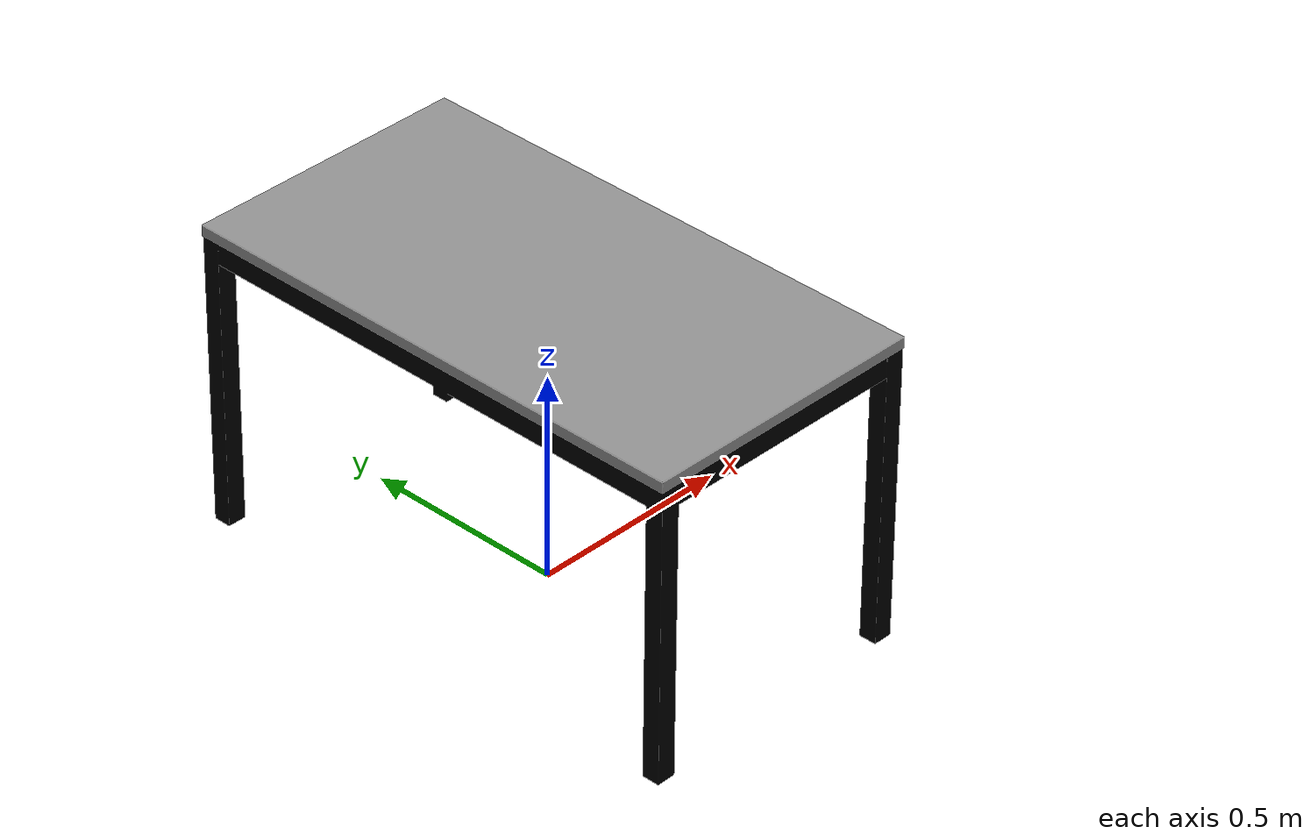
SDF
<?xml version="1.0" ?>
<sdf version="1.0">
  <model name="desk">
    <static>true</static>
    <link name="desk">
      <collision name="surface">
        <pose>0 0 0.7000 0 0 0</pose>
        <geometry>
          <box>
            <size>0.7000 1.3000 0.0800</size>
          </box>
        </geometry>
        <surface>
          <friction>
            <ode>
              <mu>0.6</mu>
              <mu2>0.6</mu2>
            </ode>
          </friction>
        </surface>
      </collision>

      <collision name="left_front_leg">
        <pose>0.3283 0.6266 0.3300 0 0 0</pose>
        <geometry>
          <box>
            <size>0.0434 0.0467 0.6600</size>
          </box>
        </geometry>
      </collision>

      <collision name="right_front_leg">
        <pose>0.3283 -0.6266 0.3300 0 0 0</pose>
        <geometry>
          <box>
            <size>0.0434 0.0467 0.6600</size>
          </box>
        </geometry>
      </collision>

      <collision name="left_back_leg">
        <pose>-0.3283 0.6266 0.3300 0 0 0</pose>
        <geometry>
          <box>
            <size>0.0434 0.0467 0.6600</size>
          </box>
        </geometry>
      </collision>

      <collision name="right_back_leg">
        <pose>-0.3283 -0.6266 0.3300 0 0 0</pose>
        <geometry>
          <box>
            <size>0.0434 0.0467 0.6600</size>
          </box>
        </geometry>
      </collision>

      <visual name="desk_mesh">
	  <cast_shadows>true</cast_shadows>
        <geometry>
          <mesh>
	        <uri>model://desk/meshes/model.dae</uri>
	      </mesh>
        </geometry>
      </visual>
    </link>
  </model>
</sdf>
